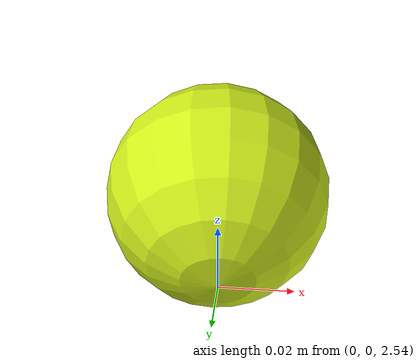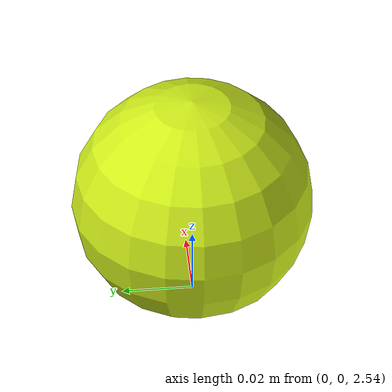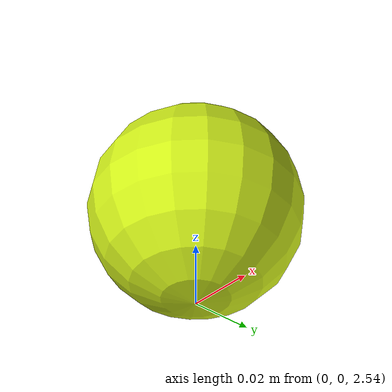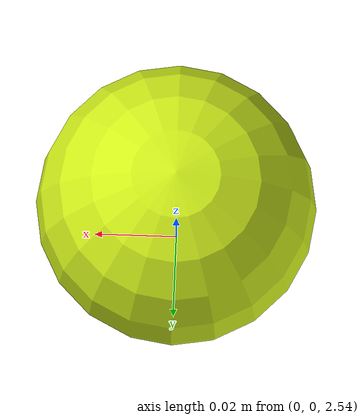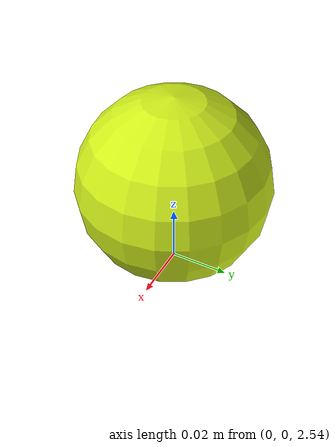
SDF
<?xml version="1.0"?>
<sdf version="1.11">
  <model name="tennis_ball_compliant">
    <pose>0 0 2.573 0 0 0</pose>
    <link name="ball_link">
      <inertial>
        <mass>0.058</mass>
        <!-- Thin-shell approximation I=2/3*m*r^2. -->
        <inertia><ixx>4.2108e-5</ixx><iyy>4.2108e-5</iyy><izz>4.2108e-5</izz></inertia>
      </inertial>
      <!-- Native collision remains only for cradle/unrelated category 0x0008.
           It cannot collide with analytical wheels (0x0002) or ground (0x0001). -->
      <collision name="cradle_only_collision">
        <geometry><sphere><radius>0.033</radius></sphere></geometry>
        <surface><contact><category_bitmask>4</category_bitmask><collide_bitmask>8</collide_bitmask></contact></surface>
      </collision>
      <visual name="ball_visual">
        <geometry><sphere><radius>0.033</radius></sphere></geometry>
        <material><ambient>0.75 0.88 0.08 1</ambient><diffuse>0.82 0.94 0.10 1</diffuse></material>
      </visual>
    </link>
    <plugin filename="tennis_ball_compliant_contact_system"
            name="tennis_ball_contact_system::TennisBallContactSystem">
      <ball_link>ball_link</ball_link>
      <left_wheel_link>flywheel_left_link</left_wheel_link>
      <right_wheel_link>flywheel_right_link</right_wheel_link>
      <ball_radius>0.033</ball_radius>
      <loading_exponent>1.5</loading_exponent>
      <unloading_exponent>1.9866353710127362</unloading_exponent>
      <loading_stiffness>107309.29404174259</loading_stiffness>
      <dynamic_damping>4692.375890562493</dynamic_damping>
      <maximum_compression>0.035</maximum_compression>
      <force_cap>5000.0</force_cap>
      <enable_ground>true</enable_ground><ground_height>0.0</ground_height>
      <telemetry_topic>/tennis_ball/compliant_contacts</telemetry_topic>
      <!-- friction_coefficient intentionally absent: physical launcher tyre
           friction calibration is pending, so no tangential force is invented. -->
    </plugin>
  </model>
</sdf>
